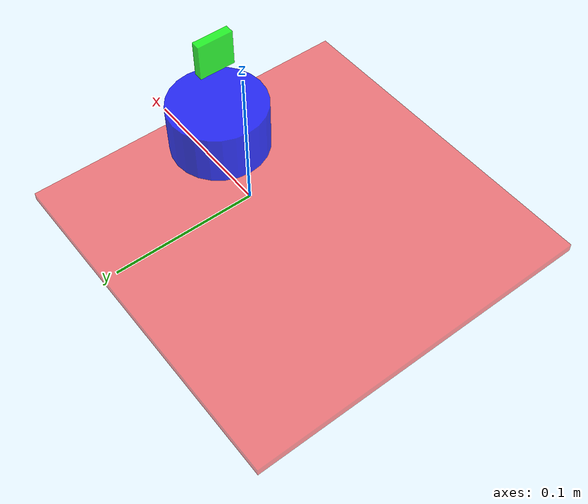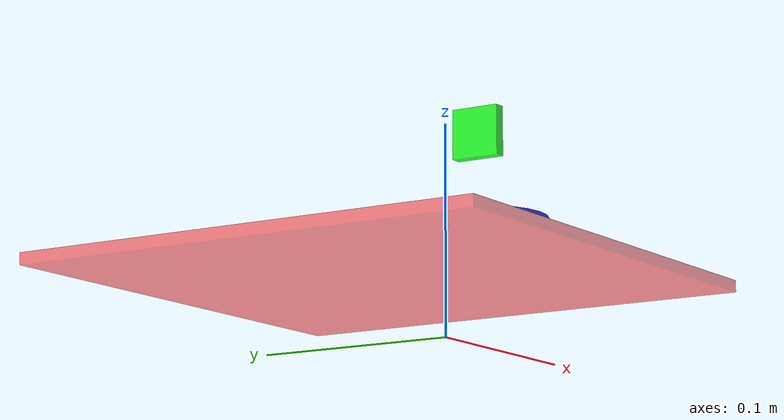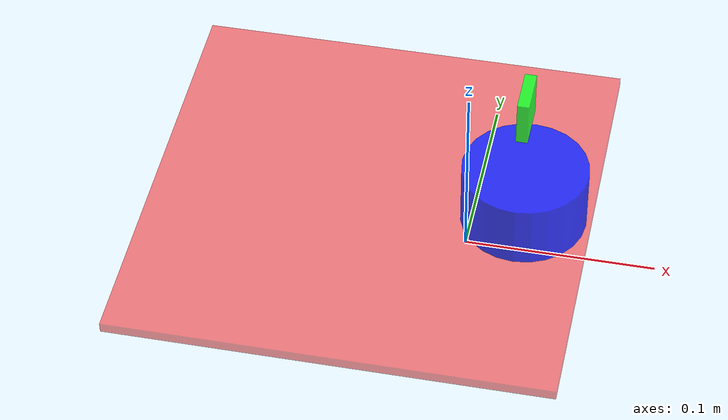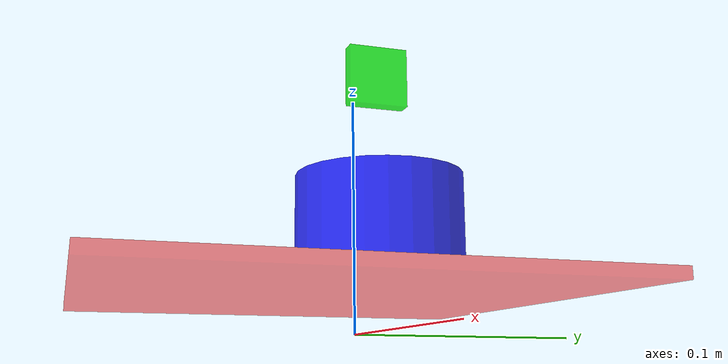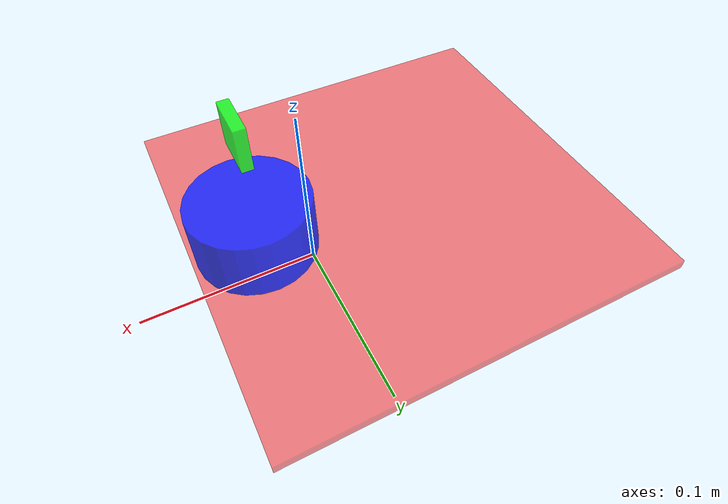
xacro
<?xml version="1.0"?>
<robot xmlns:xacro="http://www.ros.org/wiki/xacro" name="minibot_light_01">
  <!-- https://en.wikipedia.org/wiki/List_of_moments_of_inertia -->
  <xacro:macro name="cylinder_inertia" params="m r h">
    <mass value="${m}"/>
    <inertia ixx="${m*(3*r*r+h*h)/12}" ixy = "0" ixz = "0" iyy="${m*(3*r*r+h*h)/12}" iyz = "0" izz="${m*r*r/2}" />
  </xacro:macro>
  <xacro:macro name="box_inertia" params="m x y z">
    <mass value="${m}"/>
    <inertia ixx="${m*(y*y+z*z)/12}" ixy = "0" ixz = "0" iyy="${m*(x*x+z*z)/12}" iyz = "0" izz="${m*(x*x+z*z)/12}" />
  </xacro:macro>
  <xacro:macro name="sphere_inertia" params="m r">
    <mass value="${m}"/>
    <inertia ixx="${2*m*r*r/5}" ixy = "0" ixz = "0" iyy="${2*m*r*r/5}" iyz = "0" izz="${2*m*r*r/5}" />
  </xacro:macro>

  <material name="vehicle_mat">
    <color rgba="1.0 0.0 0.0 0.5"/>
  </material>

  <material name="laser_mat">
    <color rgba="0.0 0.0 1.0 0.8"/>
  </material>

  <material name="camera_mat">
    <color rgba="0.0 1.0 0.0 0.8"/>
  </material>

  <link name="base_link"/>

  <xacro:property name="body_space" value="0.0195" />
  <xacro:property name="body_size_x" value="0.23" />
  <xacro:property name="body_size_y" value="0.23" />
  <xacro:property name="body_collision_y" value="0.15" />
  <xacro:property name="body_size_z" value="0.1125" />
  <xacro:property name="body_x" value="-0.05" />
  <xacro:property name="body_z" value="${body_space + body_size_z / 2}" />
  <xacro:property name="body_mass" value="1.0" />
  <xacro:property name="body_panel_thickness" value="0.0055" />
  <xacro:property name="body_panel_1_z" value="${-body_size_z/2 + body_panel_thickness/2}" />
  <xacro:property name="body_panel_2_z" value="${body_panel_1_z + 0.05050}" />
  <xacro:property name="body_panel_3_z" value="${body_panel_2_z + 0.05650}" />

  <joint name="body_joint" type="fixed">
    <origin rpy="0 0 0" xyz="${body_x} 0 ${body_z}"/>
    <parent link="base_link"/>
    <child link="body_link"/>
  </joint>

  <link name="body_link">
    <collision>
      <origin rpy="0 0 0" xyz="0 0 0"/>
      <geometry>
        <box size="${body_size_x} ${body_collision_y} ${body_size_z}"/>
      </geometry>
    </collision>
    <visual>
      <origin rpy="0 0 0" xyz="0 0 ${body_panel_1_z}"/>
      <geometry>
        <box size="${body_size_x} ${body_size_y} ${body_panel_thickness}"/>
      </geometry>
      <material name="vehicle_mat"/>
    </visual>
    <inertial>
      <origin rpy="0 0 0" xyz="0 0 0"/>
      <xacro:box_inertia m="${body_mass}" x="${body_size_x}" y="${body_collision_y}" z="${body_size_z}"/>
    </inertial>
  </link>

  <gazebo reference="body_link">
    <material>Gazebo/Red</material>
    <mu1>0.05</mu1>
    <mu2>0.05</mu2>
  </gazebo>

  <xacro:property name="laser_radius" value="0.0328" />
  <xacro:property name="laser_size_z" value="0.0352" />
  <xacro:property name="laser_x" value="0.03" />
  <xacro:property name="laser_z" value="${0.025 + laser_size_z/2}" />
  <xacro:property name="laser_mass" value="0.180" />

  <joint name="laser_joint" type="fixed">
    <origin xyz="${laser_x} 0 ${laser_z}" rpy="0 0 ${radians(-90)}"/>
    <parent link="base_link"/>
    <child link="base_laser_link"/>
  </joint>

  <link name="base_laser_link">
    <collision>
      <origin rpy="0 0 0" xyz="0 0 0"/>
      <geometry>
        <cylinder radius="${laser_radius}" length="${laser_size_z}"/>
      </geometry>
    </collision>
    <visual>
      <origin rpy="0 0 0" xyz="0 0 0"/>
      <geometry>
        <cylinder radius="${laser_radius}" length="${laser_size_z}"/>
      </geometry>
      <material name="laser_mat"/>
    </visual>
    <inertial>
      <origin rpy="0 0 0" xyz="0 0 0"/>
      <xacro:cylinder_inertia m="${laser_mass}" r="${laser_radius}" h="${laser_size_z}"/>
    </inertial>
  </link>

  <gazebo reference="base_laser_link">
    <material>Gazebo/Blue</material>
    <mu1>0.05</mu1>
    <mu2>0.05</mu2>
  </gazebo>

  <xacro:property name="camera_size_x" value="0.006" />
  <xacro:property name="camera_size_y" value="0.024" />
  <xacro:property name="camera_size_z" value="0.024" />
  <xacro:property name="camera_x" value="0.0289" />
  <xacro:property name="camera_z" value="0.10125" />
  <xacro:property name="camera_mass" value="0.010" />

  <joint name="camera_joint" type="fixed">
    <origin xyz="${camera_x} 0 ${camera_z}" rpy="0 0 0"/>
    <parent link="base_link"/>
    <child link="camera_link"/>
  </joint>

  <link name="camera_link">
    <collision>
      <origin rpy="0 0 0" xyz="0 0 0"/>
      <geometry>
        <box size="${camera_size_x} ${camera_size_y} ${camera_size_z}"/>
      </geometry>
    </collision>
    <visual>
      <origin rpy="0 0 0" xyz="0 0 0"/>
      <geometry>
        <box size="${camera_size_x} ${camera_size_y} ${camera_size_z}"/>
      </geometry>
      <material name="camera_mat"/>
    </visual>
    <inertial>
      <origin rpy="0 0 0" xyz="0 0 0"/>
      <xacro:box_inertia m="${camera_mass}" x="${camera_size_x}" y="${camera_size_y}" z="${camera_size_z}"/>
    </inertial>
  </link>

  <gazebo reference="camera_link">
    <material>Gazebo/Green</material>
    <mu1>0.05</mu1>
    <mu2>0.05</mu2>
  </gazebo>
</robot>
